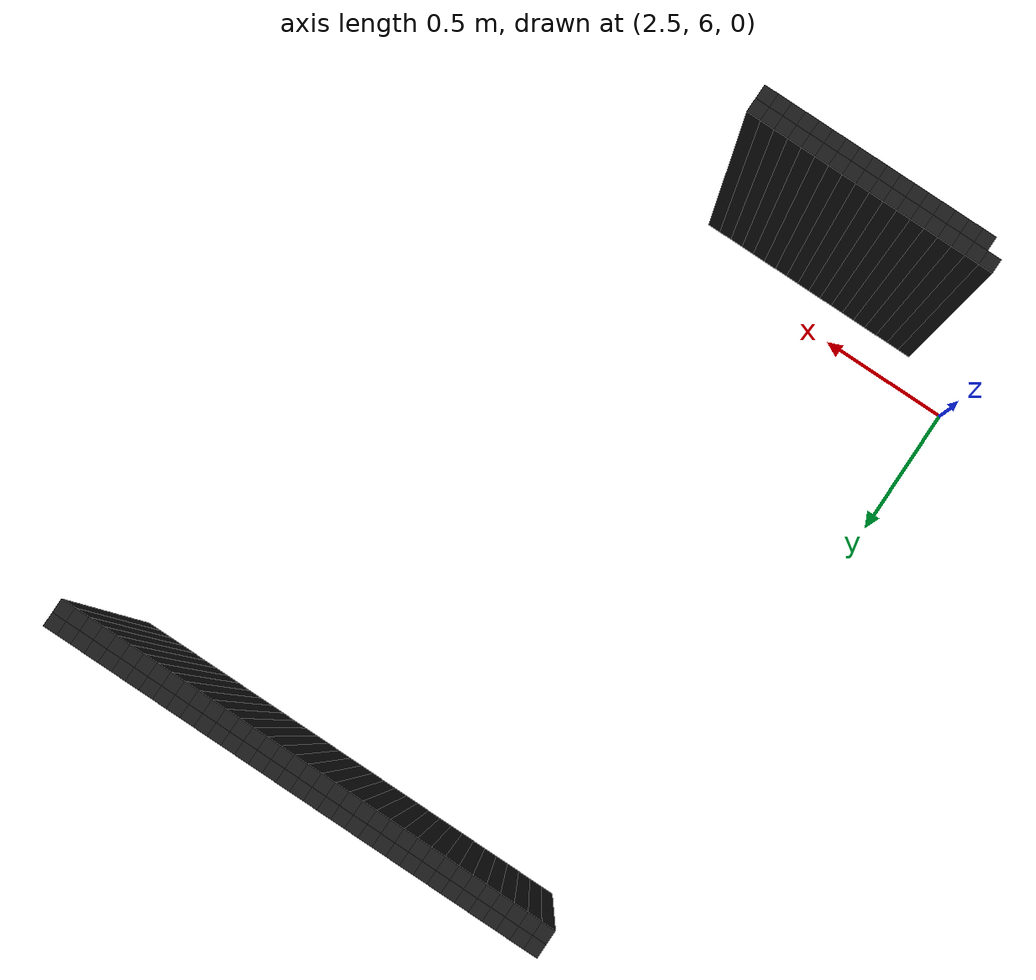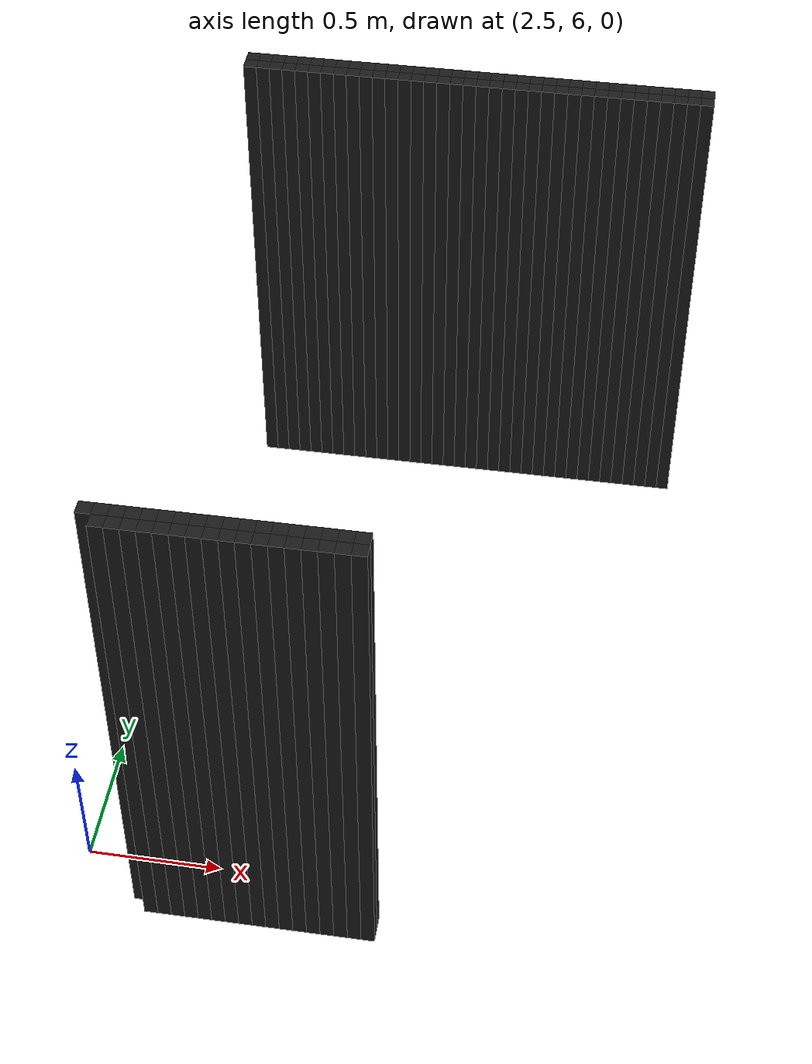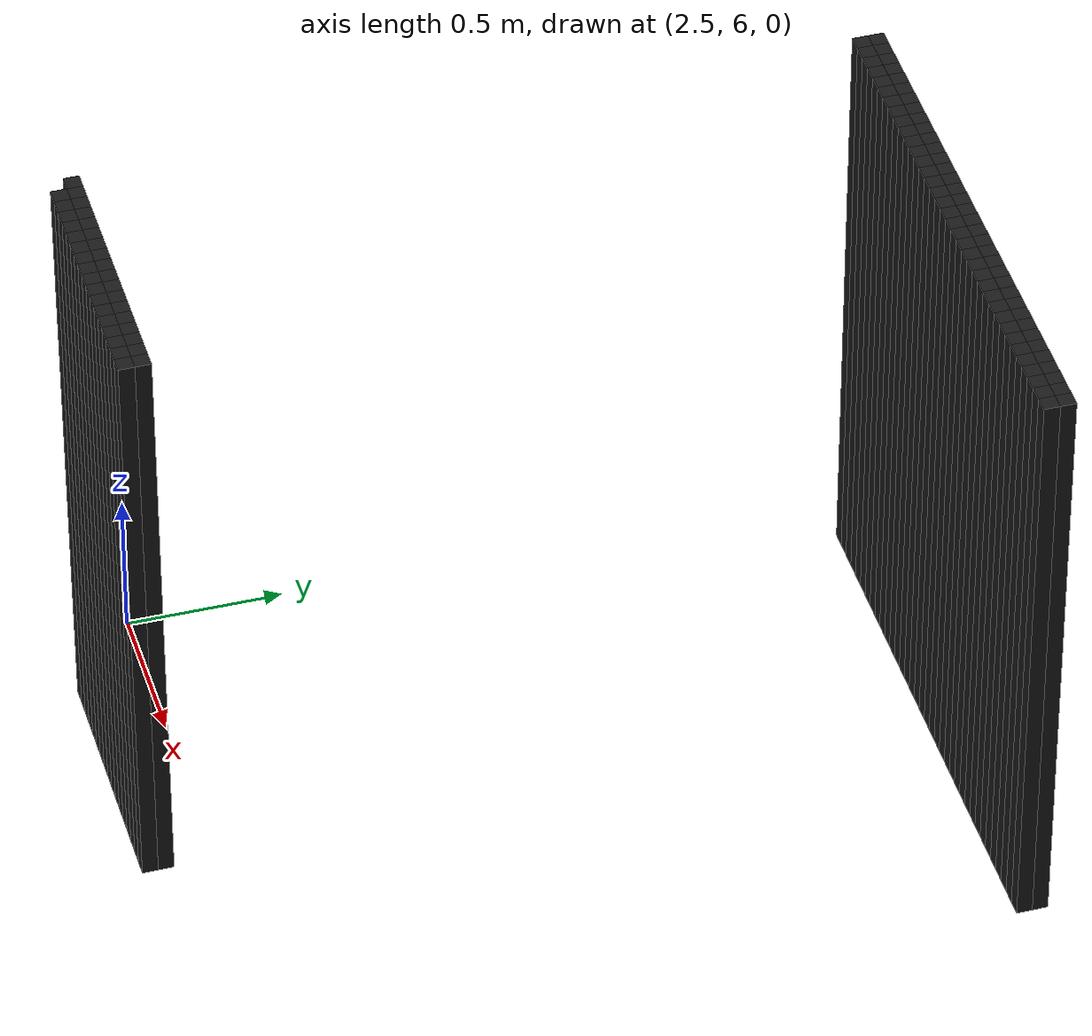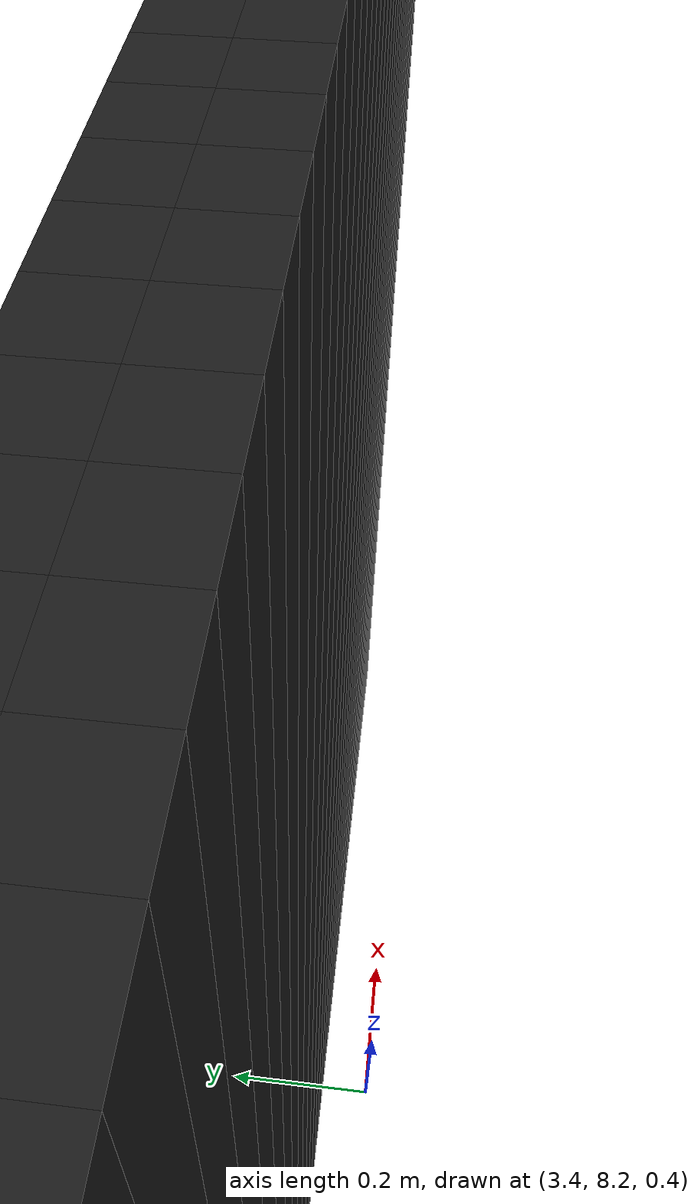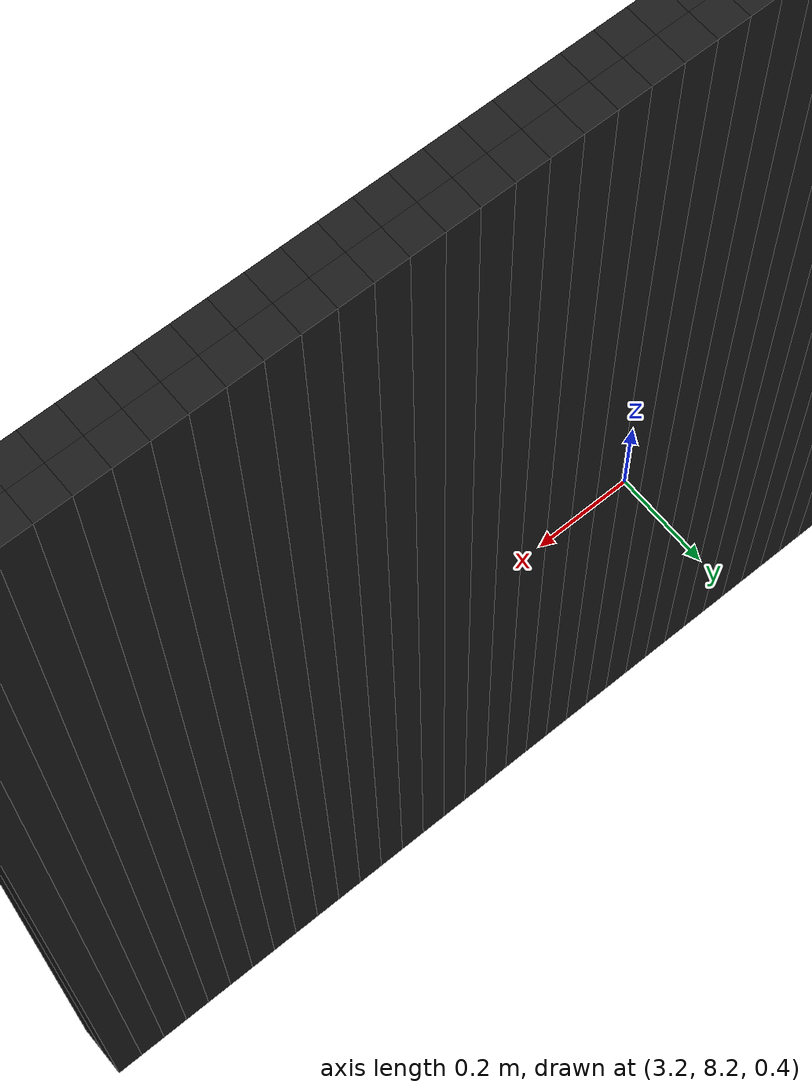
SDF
<sdf version="1.6">
 <model name="obstacle_145_0">
  <pose>2.74 8.350000000000001 1.0 0 0 0</pose>
  <static>true</static>
  <link name="box_link">
   <collision name="box_collision"><geometry><box><size>0.05 0.05 2.0</size></box></geometry></collision>
   <visual name="box_visual">
    <geometry><box><size>0.05 0.05 2.0</size></box></geometry>
    <material><ambient>0 0 0 1</ambient><diffuse>0.1 0.1 0.1 1</diffuse></material>
   </visual>
  </link>
 </model>
 <model name="obstacle_146_0">
  <pose>2.790000000000001 8.350000000000001 1.0 0 0 0</pose>
  <static>true</static>
  <link name="box_link">
   <collision name="box_collision"><geometry><box><size>0.05 0.05 2.0</size></box></geometry></collision>
   <visual name="box_visual">
    <geometry><box><size>0.05 0.05 2.0</size></box></geometry>
    <material><ambient>0 0 0 1</ambient><diffuse>0.1 0.1 0.1 1</diffuse></material>
   </visual>
  </link>
 </model>
 <model name="obstacle_147_0">
  <pose>2.8400000000000007 8.350000000000001 1.0 0 0 0</pose>
  <static>true</static>
  <link name="box_link">
   <collision name="box_collision"><geometry><box><size>0.05 0.05 2.0</size></box></geometry></collision>
   <visual name="box_visual">
    <geometry><box><size>0.05 0.05 2.0</size></box></geometry>
    <material><ambient>0 0 0 1</ambient><diffuse>0.1 0.1 0.1 1</diffuse></material>
   </visual>
  </link>
 </model>
 <model name="obstacle_148_0">
  <pose>2.8900000000000006 8.350000000000001 1.0 0 0 0</pose>
  <static>true</static>
  <link name="box_link">
   <collision name="box_collision"><geometry><box><size>0.05 0.05 2.0</size></box></geometry></collision>
   <visual name="box_visual">
    <geometry><box><size>0.05 0.05 2.0</size></box></geometry>
    <material><ambient>0 0 0 1</ambient><diffuse>0.1 0.1 0.1 1</diffuse></material>
   </visual>
  </link>
 </model>
 <model name="obstacle_149_0">
  <pose>2.9400000000000004 8.350000000000001 1.0 0 0 0</pose>
  <static>true</static>
  <link name="box_link">
   <collision name="box_collision"><geometry><box><size>0.05 0.05 2.0</size></box></geometry></collision>
   <visual name="box_visual">
    <geometry><box><size>0.05 0.05 2.0</size></box></geometry>
    <material><ambient>0 0 0 1</ambient><diffuse>0.1 0.1 0.1 1</diffuse></material>
   </visual>
  </link>
 </model>
 <model name="obstacle_150_0">
  <pose>2.99 8.350000000000001 1.0 0 0 0</pose>
  <static>true</static>
  <link name="box_link">
   <collision name="box_collision"><geometry><box><size>0.05 0.05 2.0</size></box></geometry></collision>
   <visual name="box_visual">
    <geometry><box><size>0.05 0.05 2.0</size></box></geometry>
    <material><ambient>0 0 0 1</ambient><diffuse>0.1 0.1 0.1 1</diffuse></material>
   </visual>
  </link>
 </model>
 <model name="obstacle_151_0">
  <pose>3.040000000000001 8.350000000000001 1.0 0 0 0</pose>
  <static>true</static>
  <link name="box_link">
   <collision name="box_collision"><geometry><box><size>0.05 0.05 2.0</size></box></geometry></collision>
   <visual name="box_visual">
    <geometry><box><size>0.05 0.05 2.0</size></box></geometry>
    <material><ambient>0 0 0 1</ambient><diffuse>0.1 0.1 0.1 1</diffuse></material>
   </visual>
  </link>
 </model>
 <model name="obstacle_152_0">
  <pose>3.0900000000000007 8.350000000000001 1.0 0 0 0</pose>
  <static>true</static>
  <link name="box_link">
   <collision name="box_collision"><geometry><box><size>0.05 0.05 2.0</size></box></geometry></collision>
   <visual name="box_visual">
    <geometry><box><size>0.05 0.05 2.0</size></box></geometry>
    <material><ambient>0 0 0 1</ambient><diffuse>0.1 0.1 0.1 1</diffuse></material>
   </visual>
  </link>
 </model>
 <model name="obstacle_153_0">
  <pose>3.1400000000000006 8.350000000000001 1.0 0 0 0</pose>
  <static>true</static>
  <link name="box_link">
   <collision name="box_collision"><geometry><box><size>0.05 0.05 2.0</size></box></geometry></collision>
   <visual name="box_visual">
    <geometry><box><size>0.05 0.05 2.0</size></box></geometry>
    <material><ambient>0 0 0 1</ambient><diffuse>0.1 0.1 0.1 1</diffuse></material>
   </visual>
  </link>
 </model>
 <model name="obstacle_154_0">
  <pose>3.1900000000000004 8.350000000000001 1.0 0 0 0</pose>
  <static>true</static>
  <link name="box_link">
   <collision name="box_collision"><geometry><box><size>0.05 0.05 2.0</size></box></geometry></collision>
   <visual name="box_visual">
    <geometry><box><size>0.05 0.05 2.0</size></box></geometry>
    <material><ambient>0 0 0 1</ambient><diffuse>0.1 0.1 0.1 1</diffuse></material>
   </visual>
  </link>
 </model>
 <model name="obstacle_155_0">
  <pose>3.24 8.350000000000001 1.0 0 0 0</pose>
  <static>true</static>
  <link name="box_link">
   <collision name="box_collision"><geometry><box><size>0.05 0.05 2.0</size></box></geometry></collision>
   <visual name="box_visual">
    <geometry><box><size>0.05 0.05 2.0</size></box></geometry>
    <material><ambient>0 0 0 1</ambient><diffuse>0.1 0.1 0.1 1</diffuse></material>
   </visual>
  </link>
 </model>
 <model name="obstacle_156_0">
  <pose>3.290000000000001 8.350000000000001 1.0 0 0 0</pose>
  <static>true</static>
  <link name="box_link">
   <collision name="box_collision"><geometry><box><size>0.05 0.05 2.0</size></box></geometry></collision>
   <visual name="box_visual">
    <geometry><box><size>0.05 0.05 2.0</size></box></geometry>
    <material><ambient>0 0 0 1</ambient><diffuse>0.1 0.1 0.1 1</diffuse></material>
   </visual>
  </link>
 </model>
 <model name="obstacle_157_0">
  <pose>3.3400000000000007 8.350000000000001 1.0 0 0 0</pose>
  <static>true</static>
  <link name="box_link">
   <collision name="box_collision"><geometry><box><size>0.05 0.05 2.0</size></box></geometry></collision>
   <visual name="box_visual">
    <geometry><box><size>0.05 0.05 2.0</size></box></geometry>
    <material><ambient>0 0 0 1</ambient><diffuse>0.1 0.1 0.1 1</diffuse></material>
   </visual>
  </link>
 </model>
 <model name="obstacle_158_0">
  <pose>3.3900000000000006 8.350000000000001 1.0 0 0 0</pose>
  <static>true</static>
  <link name="box_link">
   <collision name="box_collision"><geometry><box><size>0.05 0.05 2.0</size></box></geometry></collision>
   <visual name="box_visual">
    <geometry><box><size>0.05 0.05 2.0</size></box></geometry>
    <material><ambient>0 0 0 1</ambient><diffuse>0.1 0.1 0.1 1</diffuse></material>
   </visual>
  </link>
 </model>
 <model name="obstacle_159_0">
  <pose>3.4400000000000004 8.350000000000001 1.0 0 0 0</pose>
  <static>true</static>
  <link name="box_link">
   <collision name="box_collision"><geometry><box><size>0.05 0.05 2.0</size></box></geometry></collision>
   <visual name="box_visual">
    <geometry><box><size>0.05 0.05 2.0</size></box></geometry>
    <material><ambient>0 0 0 1</ambient><diffuse>0.1 0.1 0.1 1</diffuse></material>
   </visual>
  </link>
 </model>
 <model name="obstacle_160_0">
  <pose>3.49 8.350000000000001 1.0 0 0 0</pose>
  <static>true</static>
  <link name="box_link">
   <collision name="box_collision"><geometry><box><size>0.05 0.05 2.0</size></box></geometry></collision>
   <visual name="box_visual">
    <geometry><box><size>0.05 0.05 2.0</size></box></geometry>
    <material><ambient>0 0 0 1</ambient><diffuse>0.1 0.1 0.1 1</diffuse></material>
   </visual>
  </link>
 </model>
 <model name="obstacle_161_0">
  <pose>3.540000000000001 8.350000000000001 1.0 0 0 0</pose>
  <static>true</static>
  <link name="box_link">
   <collision name="box_collision"><geometry><box><size>0.05 0.05 2.0</size></box></geometry></collision>
   <visual name="box_visual">
    <geometry><box><size>0.05 0.05 2.0</size></box></geometry>
    <material><ambient>0 0 0 1</ambient><diffuse>0.1 0.1 0.1 1</diffuse></material>
   </visual>
  </link>
 </model>
 <model name="obstacle_162_0">
  <pose>3.59 8.350000000000001 1.0 0 0 0</pose>
  <static>true</static>
  <link name="box_link">
   <collision name="box_collision"><geometry><box><size>0.05 0.05 2.0</size></box></geometry></collision>
   <visual name="box_visual">
    <geometry><box><size>0.05 0.05 2.0</size></box></geometry>
    <material><ambient>0 0 0 1</ambient><diffuse>0.1 0.1 0.1 1</diffuse></material>
   </visual>
  </link>
 </model>
 <model name="obstacle_163_0">
  <pose>3.6400000000000006 8.350000000000001 1.0 0 0 0</pose>
  <static>true</static>
  <link name="box_link">
   <collision name="box_collision"><geometry><box><size>0.05 0.05 2.0</size></box></geometry></collision>
   <visual name="box_visual">
    <geometry><box><size>0.05 0.05 2.0</size></box></geometry>
    <material><ambient>0 0 0 1</ambient><diffuse>0.1 0.1 0.1 1</diffuse></material>
   </visual>
  </link>
 </model>
 <model name="obstacle_164_0">
  <pose>3.6900000000000013 8.350000000000001 1.0 0 0 0</pose>
  <static>true</static>
  <link name="box_link">
   <collision name="box_collision"><geometry><box><size>0.05 0.05 2.0</size></box></geometry></collision>
   <visual name="box_visual">
    <geometry><box><size>0.05 0.05 2.0</size></box></geometry>
    <material><ambient>0 0 0 1</ambient><diffuse>0.1 0.1 0.1 1</diffuse></material>
   </visual>
  </link>
 </model>
 <model name="obstacle_165_0">
  <pose>3.74 8.350000000000001 1.0 0 0 0</pose>
  <static>true</static>
  <link name="box_link">
   <collision name="box_collision"><geometry><box><size>0.05 0.05 2.0</size></box></geometry></collision>
   <visual name="box_visual">
    <geometry><box><size>0.05 0.05 2.0</size></box></geometry>
    <material><ambient>0 0 0 1</ambient><diffuse>0.1 0.1 0.1 1</diffuse></material>
   </visual>
  </link>
 </model>
 <model name="obstacle_166_0">
  <pose>3.790000000000001 8.350000000000001 1.0 0 0 0</pose>
  <static>true</static>
  <link name="box_link">
   <collision name="box_collision"><geometry><box><size>0.05 0.05 2.0</size></box></geometry></collision>
   <visual name="box_visual">
    <geometry><box><size>0.05 0.05 2.0</size></box></geometry>
    <material><ambient>0 0 0 1</ambient><diffuse>0.1 0.1 0.1 1</diffuse></material>
   </visual>
  </link>
 </model>
 <model name="obstacle_167_0">
  <pose>3.84 8.350000000000001 1.0 0 0 0</pose>
  <static>true</static>
  <link name="box_link">
   <collision name="box_collision"><geometry><box><size>0.05 0.05 2.0</size></box></geometry></collision>
   <visual name="box_visual">
    <geometry><box><size>0.05 0.05 2.0</size></box></geometry>
    <material><ambient>0 0 0 1</ambient><diffuse>0.1 0.1 0.1 1</diffuse></material>
   </visual>
  </link>
 </model>
 <model name="obstacle_168_0">
  <pose>3.8900000000000006 8.350000000000001 1.0 0 0 0</pose>
  <static>true</static>
  <link name="box_link">
   <collision name="box_collision"><geometry><box><size>0.05 0.05 2.0</size></box></geometry></collision>
   <visual name="box_visual">
    <geometry><box><size>0.05 0.05 2.0</size></box></geometry>
    <material><ambient>0 0 0 1</ambient><diffuse>0.1 0.1 0.1 1</diffuse></material>
   </visual>
  </link>
 </model>
 <model name="obstacle_169_0">
  <pose>3.9400000000000013 8.350000000000001 1.0 0 0 0</pose>
  <static>true</static>
  <link name="box_link">
   <collision name="box_collision"><geometry><box><size>0.05 0.05 2.0</size></box></geometry></collision>
   <visual name="box_visual">
    <geometry><box><size>0.05 0.05 2.0</size></box></geometry>
    <material><ambient>0 0 0 1</ambient><diffuse>0.1 0.1 0.1 1</diffuse></material>
   </visual>
  </link>
 </model>
 <model name="obstacle_170_0">
  <pose>3.99 8.350000000000001 1.0 0 0 0</pose>
  <static>true</static>
  <link name="box_link">
   <collision name="box_collision"><geometry><box><size>0.05 0.05 2.0</size></box></geometry></collision>
   <visual name="box_visual">
    <geometry><box><size>0.05 0.05 2.0</size></box></geometry>
    <material><ambient>0 0 0 1</ambient><diffuse>0.1 0.1 0.1 1</diffuse></material>
   </visual>
  </link>
 </model>
 <model name="obstacle_171_0">
  <pose>4.040000000000001 8.350000000000001 1.0 0 0 0</pose>
  <static>true</static>
  <link name="box_link">
   <collision name="box_collision"><geometry><box><size>0.05 0.05 2.0</size></box></geometry></collision>
   <visual name="box_visual">
    <geometry><box><size>0.05 0.05 2.0</size></box></geometry>
    <material><ambient>0 0 0 1</ambient><diffuse>0.1 0.1 0.1 1</diffuse></material>
   </visual>
  </link>
 </model>
 <model name="obstacle_172_0">
  <pose>4.09 8.350000000000001 1.0 0 0 0</pose>
  <static>true</static>
  <link name="box_link">
   <collision name="box_collision"><geometry><box><size>0.05 0.05 2.0</size></box></geometry></collision>
   <visual name="box_visual">
    <geometry><box><size>0.05 0.05 2.0</size></box></geometry>
    <material><ambient>0 0 0 1</ambient><diffuse>0.1 0.1 0.1 1</diffuse></material>
   </visual>
  </link>
 </model>
 <model name="obstacle_173_0">
  <pose>4.140000000000001 8.350000000000001 1.0 0 0 0</pose>
  <static>true</static>
  <link name="box_link">
   <collision name="box_collision"><geometry><box><size>0.05 0.05 2.0</size></box></geometry></collision>
   <visual name="box_visual">
    <geometry><box><size>0.05 0.05 2.0</size></box></geometry>
    <material><ambient>0 0 0 1</ambient><diffuse>0.1 0.1 0.1 1</diffuse></material>
   </visual>
  </link>
 </model>
 <model name="obstacle_174_0">
  <pose>4.190000000000001 8.350000000000001 1.0 0 0 0</pose>
  <static>true</static>
  <link name="box_link">
   <collision name="box_collision"><geometry><box><size>0.05 0.05 2.0</size></box></geometry></collision>
   <visual name="box_visual">
    <geometry><box><size>0.05 0.05 2.0</size></box></geometry>
    <material><ambient>0 0 0 1</ambient><diffuse>0.1 0.1 0.1 1</diffuse></material>
   </visual>
  </link>
 </model>
 <model name="obstacle_175_0">
  <pose>4.24 8.350000000000001 1.0 0 0 0</pose>
  <static>true</static>
  <link name="box_link">
   <collision name="box_collision"><geometry><box><size>0.05 0.05 2.0</size></box></geometry></collision>
   <visual name="box_visual">
    <geometry><box><size>0.05 0.05 2.0</size></box></geometry>
    <material><ambient>0 0 0 1</ambient><diffuse>0.1 0.1 0.1 1</diffuse></material>
   </visual>
  </link>
 </model>
 <model name="obstacle_176_0">
  <pose>4.290000000000001 8.350000000000001 1.0 0 0 0</pose>
  <static>true</static>
  <link name="box_link">
   <collision name="box_collision"><geometry><box><size>0.05 0.05 2.0</size></box></geometry></collision>
   <visual name="box_visual">
    <geometry><box><size>0.05 0.05 2.0</size></box></geometry>
    <material><ambient>0 0 0 1</ambient><diffuse>0.1 0.1 0.1 1</diffuse></material>
   </visual>
  </link>
 </model>
 <model name="obstacle_177_0">
  <pose>4.34 8.350000000000001 1.0 0 0 0</pose>
  <static>true</static>
  <link name="box_link">
   <collision name="box_collision"><geometry><box><size>0.05 0.05 2.0</size></box></geometry></collision>
   <visual name="box_visual">
    <geometry><box><size>0.05 0.05 2.0</size></box></geometry>
    <material><ambient>0 0 0 1</ambient><diffuse>0.1 0.1 0.1 1</diffuse></material>
   </visual>
  </link>
 </model>
 <model name="obstacle_178_0">
  <pose>4.390000000000001 8.350000000000001 1.0 0 0 0</pose>
  <static>true</static>
  <link name="box_link">
   <collision name="box_collision"><geometry><box><size>0.05 0.05 2.0</size></box></geometry></collision>
   <visual name="box_visual">
    <geometry><box><size>0.05 0.05 2.0</size></box></geometry>
    <material><ambient>0 0 0 1</ambient><diffuse>0.1 0.1 0.1 1</diffuse></material>
   </visual>
  </link>
 </model>
 <model name="obstacle_179_0">
  <pose>4.440000000000001 8.350000000000001 1.0 0 0 0</pose>
  <static>true</static>
  <link name="box_link">
   <collision name="box_collision"><geometry><box><size>0.05 0.05 2.0</size></box></geometry></collision>
   <visual name="box_visual">
    <geometry><box><size>0.05 0.05 2.0</size></box></geometry>
    <material><ambient>0 0 0 1</ambient><diffuse>0.1 0.1 0.1 1</diffuse></material>
   </visual>
  </link>
 </model>
 <model name="obstacle_180_0">
  <pose>4.49 8.350000000000001 1.0 0 0 0</pose>
  <static>true</static>
  <link name="box_link">
   <collision name="box_collision"><geometry><box><size>0.05 0.05 2.0</size></box></geometry></collision>
   <visual name="box_visual">
    <geometry><box><size>0.05 0.05 2.0</size></box></geometry>
    <material><ambient>0 0 0 1</ambient><diffuse>0.1 0.1 0.1 1</diffuse></material>
   </visual>
  </link>
 </model>
 <model name="obstacle_145_1">
  <pose>2.74 8.3 1.0 0 0 0</pose>
  <static>true</static>
  <link name="box_link">
   <collision name="box_collision"><geometry><box><size>0.05 0.05 2.0</size></box></geometry></collision>
   <visual name="box_visual">
    <geometry><box><size>0.05 0.05 2.0</size></box></geometry>
    <material><ambient>0 0 0 1</ambient><diffuse>0.1 0.1 0.1 1</diffuse></material>
   </visual>
  </link>
 </model>
 <model name="obstacle_146_1">
  <pose>2.790000000000001 8.3 1.0 0 0 0</pose>
  <static>true</static>
  <link name="box_link">
   <collision name="box_collision"><geometry><box><size>0.05 0.05 2.0</size></box></geometry></collision>
   <visual name="box_visual">
    <geometry><box><size>0.05 0.05 2.0</size></box></geometry>
    <material><ambient>0 0 0 1</ambient><diffuse>0.1 0.1 0.1 1</diffuse></material>
   </visual>
  </link>
 </model>
 <model name="obstacle_147_1">
  <pose>2.8400000000000007 8.3 1.0 0 0 0</pose>
  <static>true</static>
  <link name="box_link">
   <collision name="box_collision"><geometry><box><size>0.05 0.05 2.0</size></box></geometry></collision>
   <visual name="box_visual">
    <geometry><box><size>0.05 0.05 2.0</size></box></geometry>
    <material><ambient>0 0 0 1</ambient><diffuse>0.1 0.1 0.1 1</diffuse></material>
   </visual>
  </link>
 </model>
 <model name="obstacle_148_1">
  <pose>2.8900000000000006 8.3 1.0 0 0 0</pose>
  <static>true</static>
  <link name="box_link">
   <collision name="box_collision"><geometry><box><size>0.05 0.05 2.0</size></box></geometry></collision>
   <visual name="box_visual">
    <geometry><box><size>0.05 0.05 2.0</size></box></geometry>
    <material><ambient>0 0 0 1</ambient><diffuse>0.1 0.1 0.1 1</diffuse></material>
   </visual>
  </link>
 </model>
 <model name="obstacle_149_1">
  <pose>2.9400000000000004 8.3 1.0 0 0 0</pose>
  <static>true</static>
  <link name="box_link">
   <collision name="box_collision"><geometry><box><size>0.05 0.05 2.0</size></box></geometry></collision>
   <visual name="box_visual">
    <geometry><box><size>0.05 0.05 2.0</size></box></geometry>
    <material><ambient>0 0 0 1</ambient><diffuse>0.1 0.1 0.1 1</diffuse></material>
   </visual>
  </link>
 </model>
 <model name="obstacle_150_1">
  <pose>2.99 8.3 1.0 0 0 0</pose>
  <static>true</static>
  <link name="box_link">
   <collision name="box_collision"><geometry><box><size>0.05 0.05 2.0</size></box></geometry></collision>
   <visual name="box_visual">
    <geometry><box><size>0.05 0.05 2.0</size></box></geometry>
    <material><ambient>0 0 0 1</ambient><diffuse>0.1 0.1 0.1 1</diffuse></material>
   </visual>
  </link>
 </model>
 <model name="obstacle_151_1">
  <pose>3.040000000000001 8.3 1.0 0 0 0</pose>
  <static>true</static>
  <link name="box_link">
   <collision name="box_collision"><geometry><box><size>0.05 0.05 2.0</size></box></geometry></collision>
   <visual name="box_visual">
    <geometry><box><size>0.05 0.05 2.0</size></box></geometry>
    <material><ambient>0 0 0 1</ambient><diffuse>0.1 0.1 0.1 1</diffuse></material>
   </visual>
  </link>
 </model>
 <model name="obstacle_152_1">
  <pose>3.0900000000000007 8.3 1.0 0 0 0</pose>
  <static>true</static>
  <link name="box_link">
   <collision name="box_collision"><geometry><box><size>0.05 0.05 2.0</size></box></geometry></collision>
   <visual name="box_visual">
    <geometry><box><size>0.05 0.05 2.0</size></box></geometry>
    <material><ambient>0 0 0 1</ambient><diffuse>0.1 0.1 0.1 1</diffuse></material>
   </visual>
  </link>
 </model>
 <model name="obstacle_153_1">
  <pose>3.1400000000000006 8.3 1.0 0 0 0</pose>
  <static>true</static>
  <link name="box_link">
   <collision name="box_collision"><geometry><box><size>0.05 0.05 2.0</size></box></geometry></collision>
   <visual name="box_visual">
    <geometry><box><size>0.05 0.05 2.0</size></box></geometry>
    <material><ambient>0 0 0 1</ambient><diffuse>0.1 0.1 0.1 1</diffuse></material>
   </visual>
  </link>
 </model>
 <model name="obstacle_154_1">
  <pose>3.1900000000000004 8.3 1.0 0 0 0</pose>
  <static>true</static>
  <link name="box_link">
   <collision name="box_collision"><geometry><box><size>0.05 0.05 2.0</size></box></geometry></collision>
   <visual name="box_visual">
    <geometry><box><size>0.05 0.05 2.0</size></box></geometry>
    <material><ambient>0 0 0 1</ambient><diffuse>0.1 0.1 0.1 1</diffuse></material>
   </visual>
  </link>
 </model>
 <model name="obstacle_155_1">
  <pose>3.24 8.3 1.0 0 0 0</pose>
  <static>true</static>
  <link name="box_link">
   <collision name="box_collision"><geometry><box><size>0.05 0.05 2.0</size></box></geometry></collision>
   <visual name="box_visual">
    <geometry><box><size>0.05 0.05 2.0</size></box></geometry>
    <material><ambient>0 0 0 1</ambient><diffuse>0.1 0.1 0.1 1</diffuse></material>
   </visual>
  </link>
 </model>
 <model name="obstacle_156_1">
  <pose>3.290000000000001 8.3 1.0 0 0 0</pose>
  <static>true</static>
  <link name="box_link">
   <collision name="box_collision"><geometry><box><size>0.05 0.05 2.0</size></box></geometry></collision>
   <visual name="box_visual">
    <geometry><box><size>0.05 0.05 2.0</size></box></geometry>
    <material><ambient>0 0 0 1</ambient><diffuse>0.1 0.1 0.1 1</diffuse></material>
   </visual>
  </link>
 </model>
 <model name="obstacle_157_1">
  <pose>3.3400000000000007 8.3 1.0 0 0 0</pose>
  <static>true</static>
  <link name="box_link">
   <collision name="box_collision"><geometry><box><size>0.05 0.05 2.0</size></box></geometry></collision>
   <visual name="box_visual">
    <geometry><box><size>0.05 0.05 2.0</size></box></geometry>
    <material><ambient>0 0 0 1</ambient><diffuse>0.1 0.1 0.1 1</diffuse></material>
   </visual>
  </link>
 </model>
 <model name="obstacle_158_1">
  <pose>3.3900000000000006 8.3 1.0 0 0 0</pose>
  <static>true</static>
  <link name="box_link">
   <collision name="box_collision"><geometry><box><size>0.05 0.05 2.0</size></box></geometry></collision>
   <visual name="box_visual">
    <geometry><box><size>0.05 0.05 2.0</size></box></geometry>
    <material><ambient>0 0 0 1</ambient><diffuse>0.1 0.1 0.1 1</diffuse></material>
   </visual>
  </link>
 </model>
 <model name="obstacle_159_1">
  <pose>3.4400000000000004 8.3 1.0 0 0 0</pose>
  <static>true</static>
  <link name="box_link">
   <collision name="box_collision"><geometry><box><size>0.05 0.05 2.0</size></box></geometry></collision>
   <visual name="box_visual">
    <geometry><box><size>0.05 0.05 2.0</size></box></geometry>
    <material><ambient>0 0 0 1</ambient><diffuse>0.1 0.1 0.1 1</diffuse></material>
   </visual>
  </link>
 </model>
 <model name="obstacle_160_1">
  <pose>3.49 8.3 1.0 0 0 0</pose>
  <static>true</static>
  <link name="box_link">
   <collision name="box_collision"><geometry><box><size>0.05 0.05 2.0</size></box></geometry></collision>
   <visual name="box_visual">
    <geometry><box><size>0.05 0.05 2.0</size></box></geometry>
    <material><ambient>0 0 0 1</ambient><diffuse>0.1 0.1 0.1 1</diffuse></material>
   </visual>
  </link>
 </model>
 <model name="obstacle_161_1">
  <pose>3.540000000000001 8.3 1.0 0 0 0</pose>
  <static>true</static>
  <link name="box_link">
   <collision name="box_collision"><geometry><box><size>0.05 0.05 2.0</size></box></geometry></collision>
   <visual name="box_visual">
    <geometry><box><size>0.05 0.05 2.0</size></box></geometry>
    <material><ambient>0 0 0 1</ambient><diffuse>0.1 0.1 0.1 1</diffuse></material>
   </visual>
  </link>
 </model>
 <model name="obstacle_162_1">
  <pose>3.59 8.3 1.0 0 0 0</pose>
  <static>true</static>
  <link name="box_link">
   <collision name="box_collision"><geometry><box><size>0.05 0.05 2.0</size></box></geometry></collision>
   <visual name="box_visual">
    <geometry><box><size>0.05 0.05 2.0</size></box></geometry>
    <material><ambient>0 0 0 1</ambient><diffuse>0.1 0.1 0.1 1</diffuse></material>
   </visual>
  </link>
 </model>
 <model name="obstacle_163_1">
  <pose>3.6400000000000006 8.3 1.0 0 0 0</pose>
  <static>true</static>
  <link name="box_link">
   <collision name="box_collision"><geometry><box><size>0.05 0.05 2.0</size></box></geometry></collision>
   <visual name="box_visual">
    <geometry><box><size>0.05 0.05 2.0</size></box></geometry>
    <material><ambient>0 0 0 1</ambient><diffuse>0.1 0.1 0.1 1</diffuse></material>
   </visual>
  </link>
 </model>
 <model name="obstacle_164_1">
  <pose>3.6900000000000013 8.3 1.0 0 0 0</pose>
  <static>true</static>
  <link name="box_link">
   <collision name="box_collision"><geometry><box><size>0.05 0.05 2.0</size></box></geometry></collision>
   <visual name="box_visual">
    <geometry><box><size>0.05 0.05 2.0</size></box></geometry>
    <material><ambient>0 0 0 1</ambient><diffuse>0.1 0.1 0.1 1</diffuse></material>
   </visual>
  </link>
 </model>
 <model name="obstacle_165_1">
  <pose>3.74 8.3 1.0 0 0 0</pose>
  <static>true</static>
  <link name="box_link">
   <collision name="box_collision"><geometry><box><size>0.05 0.05 2.0</size></box></geometry></collision>
   <visual name="box_visual">
    <geometry><box><size>0.05 0.05 2.0</size></box></geometry>
    <material><ambient>0 0 0 1</ambient><diffuse>0.1 0.1 0.1 1</diffuse></material>
   </visual>
  </link>
 </model>
 <model name="obstacle_166_1">
  <pose>3.790000000000001 8.3 1.0 0 0 0</pose>
  <static>true</static>
  <link name="box_link">
   <collision name="box_collision"><geometry><box><size>0.05 0.05 2.0</size></box></geometry></collision>
   <visual name="box_visual">
    <geometry><box><size>0.05 0.05 2.0</size></box></geometry>
    <material><ambient>0 0 0 1</ambient><diffuse>0.1 0.1 0.1 1</diffuse></material>
   </visual>
  </link>
 </model>
 <model name="obstacle_167_1">
  <pose>3.84 8.3 1.0 0 0 0</pose>
  <static>true</static>
  <link name="box_link">
   <collision name="box_collision"><geometry><box><size>0.05 0.05 2.0</size></box></geometry></collision>
   <visual name="box_visual">
    <geometry><box><size>0.05 0.05 2.0</size></box></geometry>
    <material><ambient>0 0 0 1</ambient><diffuse>0.1 0.1 0.1 1</diffuse></material>
   </visual>
  </link>
 </model>
 <model name="obstacle_168_1">
  <pose>3.8900000000000006 8.3 1.0 0 0 0</pose>
  <static>true</static>
  <link name="box_link">
   <collision name="box_collision"><geometry><box><size>0.05 0.05 2.0</size></box></geometry></collision>
   <visual name="box_visual">
    <geometry><box><size>0.05 0.05 2.0</size></box></geometry>
    <material><ambient>0 0 0 1</ambient><diffuse>0.1 0.1 0.1 1</diffuse></material>
   </visual>
  </link>
 </model>
 <model name="obstacle_169_1">
  <pose>3.9400000000000013 8.3 1.0 0 0 0</pose>
  <static>true</static>
  <link name="box_link">
   <collision name="box_collision"><geometry><box><size>0.05 0.05 2.0</size></box></geometry></collision>
   <visual name="box_visual">
    <geometry><box><size>0.05 0.05 2.0</size></box></geometry>
    <material><ambient>0 0 0 1</ambient><diffuse>0.1 0.1 0.1 1</diffuse></material>
   </visual>
  </link>
 </model>
 <model name="obstacle_170_1">
  <pose>3.99 8.3 1.0 0 0 0</pose>
  <static>true</static>
  <link name="box_link">
   <collision name="box_collision"><geometry><box><size>0.05 0.05 2.0</size></box></geometry></collision>
   <visual name="box_visual">
    <geometry><box><size>0.05 0.05 2.0</size></box></geometry>
    <material><ambient>0 0 0 1</ambient><diffuse>0.1 0.1 0.1 1</diffuse></material>
   </visual>
  </link>
 </model>
 <model name="obstacle_171_1">
  <pose>4.040000000000001 8.3 1.0 0 0 0</pose>
  <static>true</static>
  <link name="box_link">
   <collision name="box_collision"><geometry><box><size>0.05 0.05 2.0</size></box></geometry></collision>
   <visual name="box_visual">
    <geometry><box><size>0.05 0.05 2.0</size></box></geometry>
    <material><ambient>0 0 0 1</ambient><diffuse>0.1 0.1 0.1 1</diffuse></material>
   </visual>
  </link>
 </model>
 <model name="obstacle_172_1">
  <pose>4.09 8.3 1.0 0 0 0</pose>
  <static>true</static>
  <link name="box_link">
   <collision name="box_collision"><geometry><box><size>0.05 0.05 2.0</size></box></geometry></collision>
   <visual name="box_visual">
    <geometry><box><size>0.05 0.05 2.0</size></box></geometry>
    <material><ambient>0 0 0 1</ambient><diffuse>0.1 0.1 0.1 1</diffuse></material>
   </visual>
  </link>
 </model>
 <model name="obstacle_173_1">
  <pose>4.140000000000001 8.3 1.0 0 0 0</pose>
  <static>true</static>
  <link name="box_link">
   <collision name="box_collision"><geometry><box><size>0.05 0.05 2.0</size></box></geometry></collision>
   <visual name="box_visual">
    <geometry><box><size>0.05 0.05 2.0</size></box></geometry>
    <material><ambient>0 0 0 1</ambient><diffuse>0.1 0.1 0.1 1</diffuse></material>
   </visual>
  </link>
 </model>
 <model name="obstacle_174_1">
  <pose>4.190000000000001 8.3 1.0 0 0 0</pose>
  <static>true</static>
  <link name="box_link">
   <collision name="box_collision"><geometry><box><size>0.05 0.05 2.0</size></box></geometry></collision>
   <visual name="box_visual">
    <geometry><box><size>0.05 0.05 2.0</size></box></geometry>
    <material><ambient>0 0 0 1</ambient><diffuse>0.1 0.1 0.1 1</diffuse></material>
   </visual>
  </link>
 </model>
 <model name="obstacle_175_1">
  <pose>4.24 8.3 1.0 0 0 0</pose>
  <static>true</static>
  <link name="box_link">
   <collision name="box_collision"><geometry><box><size>0.05 0.05 2.0</size></box></geometry></collision>
   <visual name="box_visual">
    <geometry><box><size>0.05 0.05 2.0</size></box></geometry>
    <material><ambient>0 0 0 1</ambient><diffuse>0.1 0.1 0.1 1</diffuse></material>
   </visual>
  </link>
 </model>
 <model name="obstacle_176_1">
  <pose>4.290000000000001 8.3 1.0 0 0 0</pose>
  <static>true</static>
  <link name="box_link">
   <collision name="box_collision"><geometry><box><size>0.05 0.05 2.0</size></box></geometry></collision>
   <visual name="box_visual">
    <geometry><box><size>0.05 0.05 2.0</size></box></geometry>
    <material><ambient>0 0 0 1</ambient><diffuse>0.1 0.1 0.1 1</diffuse></material>
   </visual>
  </link>
 </model>
 <model name="obstacle_177_1">
  <pose>4.34 8.3 1.0 0 0 0</pose>
  <static>true</static>
  <link name="box_link">
   <collision name="box_collision"><geometry><box><size>0.05 0.05 2.0</size></box></geometry></collision>
   <visual name="box_visual">
    <geometry><box><size>0.05 0.05 2.0</size></box></geometry>
    <material><ambient>0 0 0 1</ambient><diffuse>0.1 0.1 0.1 1</diffuse></material>
   </visual>
  </link>
 </model>
 <model name="obstacle_178_1">
  <pose>4.390000000000001 8.3 1.0 0 0 0</pose>
  <static>true</static>
  <link name="box_link">
   <collision name="box_collision"><geometry><box><size>0.05 0.05 2.0</size></box></geometry></collision>
   <visual name="box_visual">
    <geometry><box><size>0.05 0.05 2.0</size></box></geometry>
    <material><ambient>0 0 0 1</ambient><diffuse>0.1 0.1 0.1 1</diffuse></material>
   </visual>
  </link>
 </model>
 <model name="obstacle_179_1">
  <pose>4.440000000000001 8.3 1.0 0 0 0</pose>
  <static>true</static>
  <link name="box_link">
   <collision name="box_collision"><geometry><box><size>0.05 0.05 2.0</size></box></geometry></collision>
   <visual name="box_visual">
    <geometry><box><size>0.05 0.05 2.0</size></box></geometry>
    <material><ambient>0 0 0 1</ambient><diffuse>0.1 0.1 0.1 1</diffuse></material>
   </visual>
  </link>
 </model>
 <model name="obstacle_180_1">
  <pose>4.49 8.3 1.0 0 0 0</pose>
  <static>true</static>
  <link name="box_link">
   <collision name="box_collision"><geometry><box><size>0.05 0.05 2.0</size></box></geometry></collision>
   <visual name="box_visual">
    <geometry><box><size>0.05 0.05 2.0</size></box></geometry>
    <material><ambient>0 0 0 1</ambient><diffuse>0.1 0.1 0.1 1</diffuse></material>
   </visual>
  </link>
 </model>
 <model name="obstacle_145_50">
  <pose>2.74 5.8500000000000005 1.0 0 0 0</pose>
  <static>true</static>
  <link name="box_link">
   <collision name="box_collision"><geometry><box><size>0.05 0.05 2.0</size></box></geometry></collision>
   <visual name="box_visual">
    <geometry><box><size>0.05 0.05 2.0</size></box></geometry>
    <material><ambient>0 0 0 1</ambient><diffuse>0.1 0.1 0.1 1</diffuse></material>
   </visual>
  </link>
 </model>
 <model name="obstacle_146_50">
  <pose>2.790000000000001 5.8500000000000005 1.0 0 0 0</pose>
  <static>true</static>
  <link name="box_link">
   <collision name="box_collision"><geometry><box><size>0.05 0.05 2.0</size></box></geometry></collision>
   <visual name="box_visual">
    <geometry><box><size>0.05 0.05 2.0</size></box></geometry>
    <material><ambient>0 0 0 1</ambient><diffuse>0.1 0.1 0.1 1</diffuse></material>
   </visual>
  </link>
 </model>
 <model name="obstacle_147_50">
  <pose>2.8400000000000007 5.8500000000000005 1.0 0 0 0</pose>
  <static>true</static>
  <link name="box_link">
   <collision name="box_collision"><geometry><box><size>0.05 0.05 2.0</size></box></geometry></collision>
   <visual name="box_visual">
    <geometry><box><size>0.05 0.05 2.0</size></box></geometry>
    <material><ambient>0 0 0 1</ambient><diffuse>0.1 0.1 0.1 1</diffuse></material>
   </visual>
  </link>
 </model>
 <model name="obstacle_148_50">
  <pose>2.8900000000000006 5.8500000000000005 1.0 0 0 0</pose>
  <static>true</static>
  <link name="box_link">
   <collision name="box_collision"><geometry><box><size>0.05 0.05 2.0</size></box></geometry></collision>
   <visual name="box_visual">
    <geometry><box><size>0.05 0.05 2.0</size></box></geometry>
    <material><ambient>0 0 0 1</ambient><diffuse>0.1 0.1 0.1 1</diffuse></material>
   </visual>
  </link>
 </model>
 <model name="obstacle_149_50">
  <pose>2.9400000000000004 5.8500000000000005 1.0 0 0 0</pose>
  <static>true</static>
  <link name="box_link">
   <collision name="box_collision"><geometry><box><size>0.05 0.05 2.0</size></box></geometry></collision>
   <visual name="box_visual">
    <geometry><box><size>0.05 0.05 2.0</size></box></geometry>
    <material><ambient>0 0 0 1</ambient><diffuse>0.1 0.1 0.1 1</diffuse></material>
   </visual>
  </link>
 </model>
 <model name="obstacle_150_50">
  <pose>2.99 5.8500000000000005 1.0 0 0 0</pose>
  <static>true</static>
  <link name="box_link">
   <collision name="box_collision"><geometry><box><size>0.05 0.05 2.0</size></box></geometry></collision>
   <visual name="box_visual">
    <geometry><box><size>0.05 0.05 2.0</size></box></geometry>
    <material><ambient>0 0 0 1</ambient><diffuse>0.1 0.1 0.1 1</diffuse></material>
   </visual>
  </link>
 </model>
 <model name="obstacle_151_50">
  <pose>3.040000000000001 5.8500000000000005 1.0 0 0 0</pose>
  <static>true</static>
  <link name="box_link">
   <collision name="box_collision"><geometry><box><size>0.05 0.05 2.0</size></box></geometry></collision>
   <visual name="box_visual">
    <geometry><box><size>0.05 0.05 2.0</size></box></geometry>
    <material><ambient>0 0 0 1</ambient><diffuse>0.1 0.1 0.1 1</diffuse></material>
   </visual>
  </link>
 </model>
 <model name="obstacle_152_50">
  <pose>3.0900000000000007 5.8500000000000005 1.0 0 0 0</pose>
  <static>true</static>
  <link name="box_link">
   <collision name="box_collision"><geometry><box><size>0.05 0.05 2.0</size></box></geometry></collision>
   <visual name="box_visual">
    <geometry><box><size>0.05 0.05 2.0</size></box></geometry>
    <material><ambient>0 0 0 1</ambient><diffuse>0.1 0.1 0.1 1</diffuse></material>
   </visual>
  </link>
 </model>
 <model name="obstacle_153_50">
  <pose>3.1400000000000006 5.8500000000000005 1.0 0 0 0</pose>
  <static>true</static>
  <link name="box_link">
   <collision name="box_collision"><geometry><box><size>0.05 0.05 2.0</size></box></geometry></collision>
   <visual name="box_visual">
    <geometry><box><size>0.05 0.05 2.0</size></box></geometry>
    <material><ambient>0 0 0 1</ambient><diffuse>0.1 0.1 0.1 1</diffuse></material>
   </visual>
  </link>
 </model>
 <model name="obstacle_154_50">
  <pose>3.1900000000000004 5.8500000000000005 1.0 0 0 0</pose>
  <static>true</static>
  <link name="box_link">
   <collision name="box_collision"><geometry><box><size>0.05 0.05 2.0</size></box></geometry></collision>
   <visual name="box_visual">
    <geometry><box><size>0.05 0.05 2.0</size></box></geometry>
    <material><ambient>0 0 0 1</ambient><diffuse>0.1 0.1 0.1 1</diffuse></material>
   </visual>
  </link>
 </model>
 <model name="obstacle_155_50">
  <pose>3.24 5.8500000000000005 1.0 0 0 0</pose>
  <static>true</static>
  <link name="box_link">
   <collision name="box_collision"><geometry><box><size>0.05 0.05 2.0</size></box></geometry></collision>
   <visual name="box_visual">
    <geometry><box><size>0.05 0.05 2.0</size></box></geometry>
    <material><ambient>0 0 0 1</ambient><diffuse>0.1 0.1 0.1 1</diffuse></material>
   </visual>
  </link>
 </model>
 <model name="obstacle_156_50">
  <pose>3.290000000000001 5.8500000000000005 1.0 0 0 0</pose>
  <static>true</static>
  <link name="box_link">
   <collision name="box_collision"><geometry><box><size>0.05 0.05 2.0</size></box></geometry></collision>
   <visual name="box_visual">
    <geometry><box><size>0.05 0.05 2.0</size></box></geometry>
    <material><ambient>0 0 0 1</ambient><diffuse>0.1 0.1 0.1 1</diffuse></material>
   </visual>
  </link>
 </model>
 <model name="obstacle_157_50">
  <pose>3.3400000000000007 5.8500000000000005 1.0 0 0 0</pose>
  <static>true</static>
  <link name="box_link">
   <collision name="box_collision"><geometry><box><size>0.05 0.05 2.0</size></box></geometry></collision>
   <visual name="box_visual">
    <geometry><box><size>0.05 0.05 2.0</size></box></geometry>
    <material><ambient>0 0 0 1</ambient><diffuse>0.1 0.1 0.1 1</diffuse></material>
   </visual>
  </link>
 </model>
 <model name="obstacle_158_50">
  <pose>3.3900000000000006 5.8500000000000005 1.0 0 0 0</pose>
  <static>true</static>
  <link name="box_link">
   <collision name="box_collision"><geometry><box><size>0.05 0.05 2.0</size></box></geometry></collision>
   <visual name="box_visual">
    <geometry><box><size>0.05 0.05 2.0</size></box></geometry>
    <material><ambient>0 0 0 1</ambient><diffuse>0.1 0.1 0.1 1</diffuse></material>
   </visual>
  </link>
 </model>
 <model name="obstacle_159_50">
  <pose>3.4400000000000004 5.8500000000000005 1.0 0 0 0</pose>
  <static>true</static>
  <link name="box_link">
   <collision name="box_collision"><geometry><box><size>0.05 0.05 2.0</size></box></geometry></collision>
   <visual name="box_visual">
    <geometry><box><size>0.05 0.05 2.0</size></box></geometry>
    <material><ambient>0 0 0 1</ambient><diffuse>0.1 0.1 0.1 1</diffuse></material>
   </visual>
  </link>
 </model>
 <model name="obstacle_160_50">
  <pose>3.49 5.8500000000000005 1.0 0 0 0</pose>
  <static>true</static>
  <link name="box_link">
   <collision name="box_collision"><geometry><box><size>0.05 0.05 2.0</size></box></geometry></collision>
   <visual name="box_visual">
    <geometry><box><size>0.05 0.05 2.0</size></box></geometry>
    <material><ambient>0 0 0 1</ambient><diffuse>0.1 0.1 0.1 1</diffuse></material>
   </visual>
  </link>
 </model>
 <model name="obstacle_161_50">
  <pose>3.540000000000001 5.8500000000000005 1.0 0 0 0</pose>
  <static>true</static>
  <link name="box_link">
   <collision name="box_collision"><geometry><box><size>0.05 0.05 2.0</size></box></geometry></collision>
   <visual name="box_visual">
    <geometry><box><size>0.05 0.05 2.0</size></box></geometry>
    <material><ambient>0 0 0 1</ambient><diffuse>0.1 0.1 0.1 1</diffuse></material>
   </visual>
  </link>
 </model>
 <model name="obstacle_162_50">
  <pose>3.59 5.8500000000000005 1.0 0 0 0</pose>
  <static>true</static>
  <link name="box_link">
   <collision name="box_collision"><geometry><box><size>0.05 0.05 2.0</size></box></geometry></collision>
   <visual name="box_visual">
    <geometry><box><size>0.05 0.05 2.0</size></box></geometry>
    <material><ambient>0 0 0 1</ambient><diffuse>0.1 0.1 0.1 1</diffuse></material>
   </visual>
  </link>
 </model>
 <model name="obstacle_146_51">
  <pose>2.790000000000001 5.8 1.0 0 0 0</pose>
  <static>true</static>
  <link name="box_link">
   <collision name="box_collision"><geometry><box><size>0.05 0.05 2.0</size></box></geometry></collision>
   <visual name="box_visual">
    <geometry><box><size>0.05 0.05 2.0</size></box></geometry>
    <material><ambient>0 0 0 1</ambient><diffuse>0.1 0.1 0.1 1</diffuse></material>
   </visual>
  </link>
 </model>
 <model name="obstacle_147_51">
  <pose>2.8400000000000007 5.8 1.0 0 0 0</pose>
  <static>true</static>
  <link name="box_link">
   <collision name="box_collision"><geometry><box><size>0.05 0.05 2.0</size></box></geometry></collision>
   <visual name="box_visual">
    <geometry><box><size>0.05 0.05 2.0</size></box></geometry>
    <material><ambient>0 0 0 1</ambient><diffuse>0.1 0.1 0.1 1</diffuse></material>
   </visual>
  </link>
 </model>
 <model name="obstacle_148_51">
  <pose>2.8900000000000006 5.8 1.0 0 0 0</pose>
  <static>true</static>
  <link name="box_link">
   <collision name="box_collision"><geometry><box><size>0.05 0.05 2.0</size></box></geometry></collision>
   <visual name="box_visual">
    <geometry><box><size>0.05 0.05 2.0</size></box></geometry>
    <material><ambient>0 0 0 1</ambient><diffuse>0.1 0.1 0.1 1</diffuse></material>
   </visual>
  </link>
 </model>
 <model name="obstacle_149_51">
  <pose>2.9400000000000004 5.8 1.0 0 0 0</pose>
  <static>true</static>
  <link name="box_link">
   <collision name="box_collision"><geometry><box><size>0.05 0.05 2.0</size></box></geometry></collision>
   <visual name="box_visual">
    <geometry><box><size>0.05 0.05 2.0</size></box></geometry>
    <material><ambient>0 0 0 1</ambient><diffuse>0.1 0.1 0.1 1</diffuse></material>
   </visual>
  </link>
 </model>
 <model name="obstacle_150_51">
  <pose>2.99 5.8 1.0 0 0 0</pose>
  <static>true</static>
  <link name="box_link">
   <collision name="box_collision"><geometry><box><size>0.05 0.05 2.0</size></box></geometry></collision>
   <visual name="box_visual">
    <geometry><box><size>0.05 0.05 2.0</size></box></geometry>
    <material><ambient>0 0 0 1</ambient><diffuse>0.1 0.1 0.1 1</diffuse></material>
   </visual>
  </link>
 </model>
 <model name="obstacle_151_51">
  <pose>3.040000000000001 5.8 1.0 0 0 0</pose>
  <static>true</static>
  <link name="box_link">
   <collision name="box_collision"><geometry><box><size>0.05 0.05 2.0</size></box></geometry></collision>
   <visual name="box_visual">
    <geometry><box><size>0.05 0.05 2.0</size></box></geometry>
    <material><ambient>0 0 0 1</ambient><diffuse>0.1 0.1 0.1 1</diffuse></material>
   </visual>
  </link>
 </model>
 <model name="obstacle_152_51">
  <pose>3.0900000000000007 5.8 1.0 0 0 0</pose>
  <static>true</static>
  <link name="box_link">
   <collision name="box_collision"><geometry><box><size>0.05 0.05 2.0</size></box></geometry></collision>
   <visual name="box_visual">
    <geometry><box><size>0.05 0.05 2.0</size></box></geometry>
    <material><ambient>0 0 0 1</ambient><diffuse>0.1 0.1 0.1 1</diffuse></material>
   </visual>
  </link>
 </model>
 <model name="obstacle_153_51">
  <pose>3.1400000000000006 5.8 1.0 0 0 0</pose>
  <static>true</static>
  <link name="box_link">
   <collision name="box_collision"><geometry><box><size>0.05 0.05 2.0</size></box></geometry></collision>
   <visual name="box_visual">
    <geometry><box><size>0.05 0.05 2.0</size></box></geometry>
    <material><ambient>0 0 0 1</ambient><diffuse>0.1 0.1 0.1 1</diffuse></material>
   </visual>
  </link>
 </model>
 <model name="obstacle_154_51">
  <pose>3.1900000000000004 5.8 1.0 0 0 0</pose>
  <static>true</static>
  <link name="box_link">
   <collision name="box_collision"><geometry><box><size>0.05 0.05 2.0</size></box></geometry></collision>
   <visual name="box_visual">
    <geometry><box><size>0.05 0.05 2.0</size></box></geometry>
    <material><ambient>0 0 0 1</ambient><diffuse>0.1 0.1 0.1 1</diffuse></material>
   </visual>
  </link>
 </model>
 <model name="obstacle_155_51">
  <pose>3.24 5.8 1.0 0 0 0</pose>
  <static>true</static>
  <link name="box_link">
   <collision name="box_collision"><geometry><box><size>0.05 0.05 2.0</size></box></geometry></collision>
   <visual name="box_visual">
    <geometry><box><size>0.05 0.05 2.0</size></box></geometry>
    <material><ambient>0 0 0 1</ambient><diffuse>0.1 0.1 0.1 1</diffuse></material>
   </visual>
  </link>
 </model>
 <model name="obstacle_156_51">
  <pose>3.290000000000001 5.8 1.0 0 0 0</pose>
  <static>true</static>
  <link name="box_link">
   <collision name="box_collision"><geometry><box><size>0.05 0.05 2.0</size></box></geometry></collision>
   <visual name="box_visual">
    <geometry><box><size>0.05 0.05 2.0</size></box></geometry>
    <material><ambient>0 0 0 1</ambient><diffuse>0.1 0.1 0.1 1</diffuse></material>
   </visual>
  </link>
 </model>
 <model name="obstacle_157_51">
  <pose>3.3400000000000007 5.8 1.0 0 0 0</pose>
  <static>true</static>
  <link name="box_link">
   <collision name="box_collision"><geometry><box><size>0.05 0.05 2.0</size></box></geometry></collision>
   <visual name="box_visual">
    <geometry><box><size>0.05 0.05 2.0</size></box></geometry>
    <material><ambient>0 0 0 1</ambient><diffuse>0.1 0.1 0.1 1</diffuse></material>
   </visual>
  </link>
 </model>
 <model name="obstacle_158_51">
  <pose>3.3900000000000006 5.8 1.0 0 0 0</pose>
  <static>true</static>
  <link name="box_link">
   <collision name="box_collision"><geometry><box><size>0.05 0.05 2.0</size></box></geometry></collision>
   <visual name="box_visual">
    <geometry><box><size>0.05 0.05 2.0</size></box></geometry>
    <material><ambient>0 0 0 1</ambient><diffuse>0.1 0.1 0.1 1</diffuse></material>
   </visual>
  </link>
 </model>
 <model name="obstacle_159_51">
  <pose>3.4400000000000004 5.8 1.0 0 0 0</pose>
  <static>true</static>
  <link name="box_link">
   <collision name="box_collision"><geometry><box><size>0.05 0.05 2.0</size></box></geometry></collision>
   <visual name="box_visual">
    <geometry><box><size>0.05 0.05 2.0</size></box></geometry>
    <material><ambient>0 0 0 1</ambient><diffuse>0.1 0.1 0.1 1</diffuse></material>
   </visual>
  </link>
 </model>
 <model name="obstacle_160_51">
  <pose>3.49 5.8 1.0 0 0 0</pose>
  <static>true</static>
  <link name="box_link">
   <collision name="box_collision"><geometry><box><size>0.05 0.05 2.0</size></box></geometry></collision>
   <visual name="box_visual">
    <geometry><box><size>0.05 0.05 2.0</size></box></geometry>
    <material><ambient>0 0 0 1</ambient><diffuse>0.1 0.1 0.1 1</diffuse></material>
   </visual>
  </link>
 </model>
 <model name="obstacle_161_51">
  <pose>3.540000000000001 5.8 1.0 0 0 0</pose>
  <static>true</static>
  <link name="box_link">
   <collision name="box_collision"><geometry><box><size>0.05 0.05 2.0</size></box></geometry></collision>
   <visual name="box_visual">
    <geometry><box><size>0.05 0.05 2.0</size></box></geometry>
    <material><ambient>0 0 0 1</ambient><diffuse>0.1 0.1 0.1 1</diffuse></material>
   </visual>
  </link>
 </model>
 <model name="obstacle_162_51">
  <pose>3.59 5.8 1.0 0 0 0</pose>
  <static>true</static>
  <link name="box_link">
   <collision name="box_collision"><geometry><box><size>0.05 0.05 2.0</size></box></geometry></collision>
   <visual name="box_visual">
    <geometry><box><size>0.05 0.05 2.0</size></box></geometry>
    <material><ambient>0 0 0 1</ambient><diffuse>0.1 0.1 0.1 1</diffuse></material>
   </visual>
  </link>
 </model>
</sdf>
